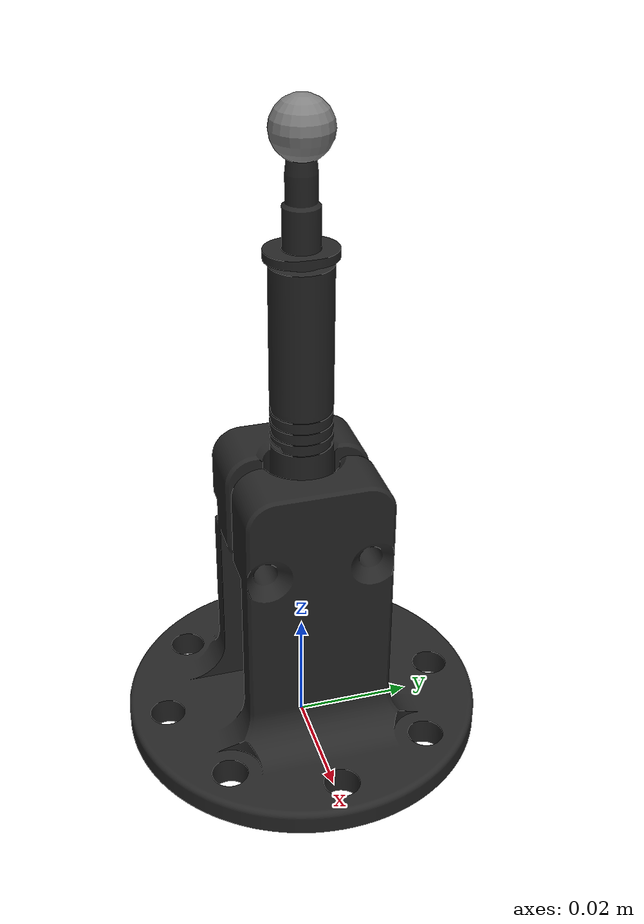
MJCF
<mujoco model="profactor_gripper">
    <compiler convexhull="true" angle="radian" meshdir="environments/" />
    <default class="2f85">
        <default class="visual3">
            <geom type="mesh" contype="0" conaffinity="0" group="2" material="gray2"/>
        </default>
        <default class="collision3">
            <geom type="mesh" group="3" rgba="1 1 0.1 1" condim="3"/>
        </default>
    </default>

    <asset>
        <material name="black2" rgba="0.149 0.149 0.149 1"/>
        <material name="wood2" rgba="0.56 0.37 0.29 1"/>
        <material name="gray2" rgba="0.4 0.4 0.4 1"/>
        <mesh name="gripper_profactor" file="Profactor_gripper/assets_gripper/Gripper_ASM.stl" scale="0.001 0.001 0.001"/>
    </asset>
  <worldbody>
        <!--light pos="0 0 1.5" dir="0 0 -1" directional="true"/-->
        <!--geom name="ground" type="plane" size="0 0 1" pos="0 0 0" quat="1 0 0 0"  contype="0" group="0" /-->
        <body name="gripper_mount" pos="0 0 0.0">
              <inertial pos="0.0 0.0 0.0"  mass="1.0" diaginertia="0.0 0.0 0.0"/>
              <geom class="visual3" mesh="gripper_profactor" material="black2"/>
              <geom class="collision3" mesh="gripper_profactor" material="black2"/>
                <site name="gripping_point" pos="0 0 0.11"/>
              </body>
  </worldbody>
</mujoco>
